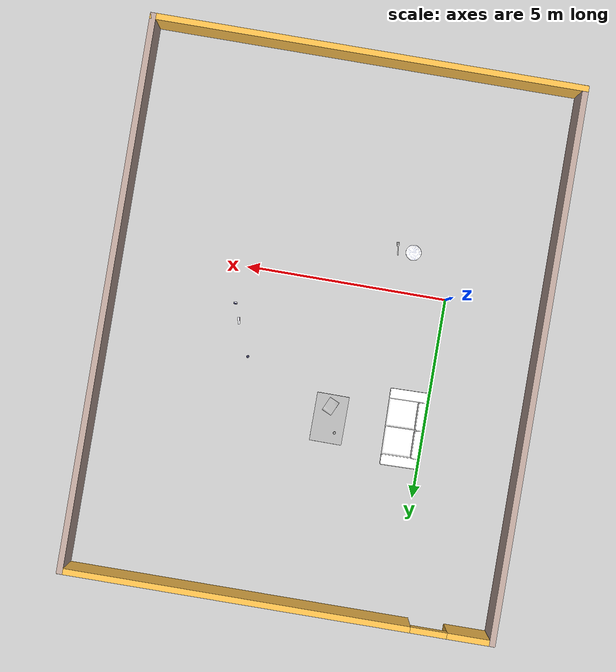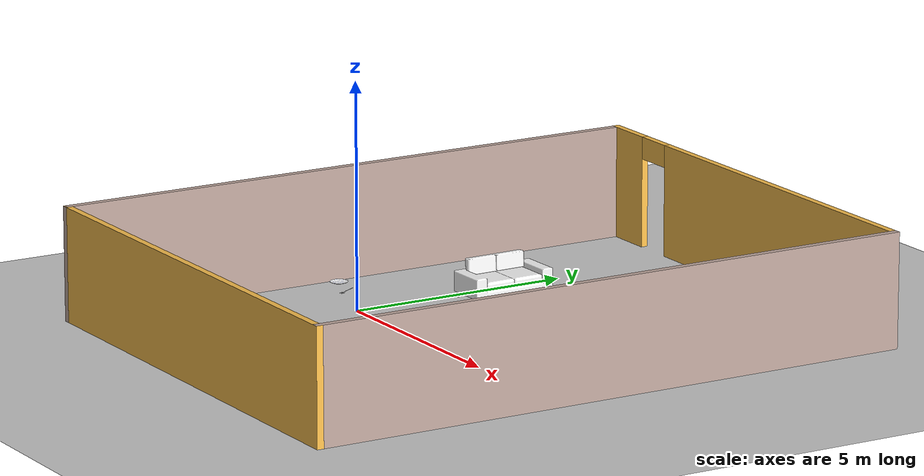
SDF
<sdf version="1.4">
 <world name="default">
  <include><uri>model://ground_plane</uri></include>
  <include><uri>model://sun</uri></include>
  <include><uri>model://center_table</uri></include>
  <include><uri>model://couch2</uri></include>
  <include><uri>model://spatula</uri></include>
  <include><uri>model://bottle</uri></include>
  <include><uri>model://cereal_box</uri></include>
  <include><uri>model://milk_carton</uri></include>
  <include><uri>model://plate</uri></include>
  <include><uri>model://newspaper</uri></include>
  <include><uri>model://coke_can2</uri></include>
  <include><uri>model://Home_Environment_Walls</uri></include>
 </world>
</sdf>

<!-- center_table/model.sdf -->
<sdf version="1.4">
  <model name="center_table">
    <pose>2.759101 2.784628 0 0 0 1.562971</pose>
    <link name="link">
     <collision name="collision">
        <pose>0.6 0.385 0.385 0 0 0</pose>
        <geometry>
          <box>
            <size>1.2 0.8 0.04</size>
           </box>
        </geometry>
      </collision>
      <collision name="collision">
        <geometry>
          <mesh>
            <uri>model://center_table/meshes/center_table.dae</uri>
          </mesh>
        </geometry>
      </collision>
      <visual name="visual">
        <geometry>
          <mesh>
            <uri>model://center_table/meshes/center_table.dae</uri>
          </mesh>
        </geometry>
      </visual>
    </link>
    <static>1</static>
  </model>
</sdf>

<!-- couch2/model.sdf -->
<sdf version="1.4">
  <model name="couch2">
    <link name="link">
     <collision name="collision">
        <pose>0.9832620 2.380100 0 0 1.590720</pose>
        <geometry>
          <mesh>
            <uri>model://couch2/meshes/couch2.dae</uri>
          </mesh>
        </geometry>
      </collision>
      <collision name="collision">
        <pose>0.983262 2.380100 0 0 0 1.590720</pose>
        <geometry>
          <mesh>
            <uri>model://couch2/meshes/couch2.dae</uri>
          </mesh>
        </geometry>
      </collision>
      <visual name="visual">
        <pose>0.983262 2.380100 0 0 0 1.590720</pose>
        <geometry>
          <mesh>
            <uri>model://couch2/meshes/couch2.dae</uri>
          </mesh>
        </geometry>
      </visual>
    </link>
    <static>1</static>
  </model>
</sdf>

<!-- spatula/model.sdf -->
<sdf version="1.4">
  <model name="spatula">
  <pose>2.25 -0.73 .9 0 0 -3</pose>
  <static>false</static>
    <link name="link">
      <inertial>
	<mass>0.4</mass>
	<pose>0.9 0.3 0 0 0 0</pose>
        <inertia>
          <ixx>0.00055575</ixx>
          <ixy>0</ixy>
          <ixz>0</ixz>
          <iyy>0.00055575</iyy>
          <iyz>0</iyz>
          <izz>0.0001755</izz>
	</inertia>
      </inertial>
      <collision name="collision">
        <geometry>
          <mesh>
            <uri>model://spatula/meshes/spatula.dae</uri>
          </mesh>
        </geometry>
        <surface>
          <friction>
            <ode>
              <mu>1.0</mu>
              <mu2>1.0</mu2>
            </ode>
          </friction>
          <contact>
            <ode>
              <kp>10000000.0</kp>
              <kd>1.0</kd>
              <min_depth>0.001</min_depth>
              <max_vel>0.1</max_vel>
            </ode>
          </contact>
        </surface>
      </collision>
      <visual name="visual">
        <geometry>
          <mesh>
            <uri>model://spatula/meshes/spatula.dae</uri>
          </mesh>
        </geometry>
      </visual>
    </link>
  </model>
</sdf>

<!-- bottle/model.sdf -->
<sdf version="1.4">
  <model name="bottle">
  <pose>4.6 2.2 0.8 0 0 0</pose>
    <link name="link">
     <inertial>
	<mass>0.39</mass>
	<pose>0 0 0.08 0 0 0</pose>
        <inertia>
          <ixx>0.00055575</ixx>
          <ixy>0</ixy>
          <ixz>0</ixz>
          <iyy>0.00055575</iyy>
          <iyz>0</iyz>
          <izz>0.0001755</izz>
	</inertia>
     </inertial>
     <collision name="collision">
        <geometry>
          <mesh>
            <uri>model://bottle/meshes/bottle.dae</uri>
<scale>0.02 0.02 0.02</scale>
          </mesh>
        </geometry>
        <surface>
          <friction>
            <ode>
              <mu>1.0</mu>
              <mu2>1.0</mu2>
            </ode>
          </friction>
          <contact>
            <ode>
              <kp>10000000.0</kp>
              <kd>1.0</kd>
              <min_depth>0.001</min_depth>
              <max_vel>0.1</max_vel>
            </ode>
          </contact>
        </surface>
      </collision>
      <visual name="visual">
        <geometry>
          <mesh>
            <uri>model://bottle/meshes/bottle.dae</uri>
            <scale>0.02 0.02 0.02</scale>
          </mesh>
        </geometry>
	<material>
            <ambient>0.4 0 0.7 0.4</ambient>
	    <diffuse>0 0 0.2 .70</diffuse>
	    <specular>0 0 0 1</specular>
	    <emissive>0 0 0 0</emissive>
	</material>
      </visual>
    </link>
    <static>false</static>
  </model>
</sdf>

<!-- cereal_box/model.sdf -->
<sdf version="1.4">
  <model name="cereal_box">
  <pose>4.63 1.04 0.8 0 0 0.22</pose>
    <link name="link">
     <inertial>
	<mass>0.39</mass>
	<pose>0.40 0.25 0.02 0 0 0</pose>
        <inertia>
          <ixx>0.00055575</ixx>
          <ixy>0</ixy>
          <ixz>0</ixz>
          <iyy>0.00055575</iyy>
          <iyz>0</iyz>
          <izz>0.0001755</izz>
	</inertia>
     </inertial>
     <collision name="collision">
        <geometry>
          <mesh>
            <uri>model://cereal_box/meshes/cereal_box.dae</uri>
<scale>0.06 0.06 0.06</scale>
          </mesh>
        </geometry>
        <surface>
          <friction>
            <ode>
              <mu>1.0</mu>
              <mu2>1.0</mu2>
            </ode>
          </friction>
          <contact>
            <ode>
              <kp>10000000.0</kp>
              <kd>1.0</kd>
              <min_depth>0.001</min_depth>
              <max_vel>0.1</max_vel>
            </ode>
          </contact>
        </surface>
      </collision>
      <visual name="visual">
        <geometry>
          <mesh>
            <uri>model://cereal_box/meshes/cereal_box.dae</uri>
<scale>0.06 0.06 0.06</scale>
          </mesh>
        </geometry>
      </visual>
    </link>
    <static>false</static>
  </model>
</sdf>

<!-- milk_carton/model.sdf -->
<sdf version="1.4">
  <model name="milk_carton">
    <pose>4.9 1.6 0.8 0 0 -1.57</pose>
    <link name="link">
     <inertial>
	<mass>0.39</mass>
	<pose>0.65 0.22 0.02 0 0 0</pose>
        <inertia>
          <ixx>0.00055575</ixx>
          <ixy>0</ixy>
          <ixz>0</ixz>
          <iyy>0.00055575</iyy>
          <iyz>0</iyz>
          <izz>0.0001755</izz>
	</inertia>
     </inertial>
     <collision name="collision">
        <geometry>
          <mesh>
            <uri>model://milk_carton/meshes/milk_carton.dae</uri>
	    <scale>0.4 0.6 0.6</scale>
          </mesh>
        </geometry>
        <surface>
          <friction>
            <ode>
              <mu>1.0</mu>
              <mu2>1.0</mu2>
            </ode>
          </friction>
          <contact>
            <ode>
              <kp>10000000.0</kp>
              <kd>1.0</kd>
              <min_depth>0.001</min_depth>
              <max_vel>0.1</max_vel>
            </ode>
          </contact>
        </surface>
      </collision>
      <visual name="visual">
        <geometry>
          <mesh>
            <uri>model://milk_carton/meshes/milk_carton.dae</uri>
	    <scale>0.4 0.6 0.6</scale>
          </mesh>
        </geometry>
      </visual>
    </link>
    <static>false</static>
  </model>
</sdf>

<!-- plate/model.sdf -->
<sdf version="1.5">
  <model name="plate">
    <pose>1 -1 1 0 0 0</pose>
    <link name="link">
      <inertial>
	<mass>0.39</mass>
	<pose>0 0 0 0 0 0</pose>
        <inertia>
          <ixx>0.00055575</ixx>
          <ixy>0</ixy>
          <ixz>0</ixz>
          <iyy>0.00055575</iyy>
          <iyz>0</iyz>
          <izz>0.0001755</izz>
	</inertia>
      </inertial>
      <collision name="collision">
        <geometry>
          <mesh>
            <uri>model://plate/meshes/plate.dae</uri>
	    <scale> 0.2 0.2 0.2 </scale>
          </mesh>
        </geometry>
        <surface>
          <friction>
            <ode>
              <mu>1.0</mu>
              <mu2>1.0</mu2>
            </ode>
          </friction>
          <contact>
            <ode>
              <kp>10000000.0</kp>
              <kd>1.0</kd>
              <min_depth>0.001</min_depth>
              <max_vel>0.1</max_vel>
            </ode>
          </contact>
        </surface>
      </collision>
      <visual name="visual">
        <geometry>
          <mesh>
            <uri>model://plate/meshes/plate.dae</uri>
	    <scale> 0.2 0.2 0.2 </scale>
          </mesh>
        </geometry>
      </visual>
    </link>
  </model>
</sdf>

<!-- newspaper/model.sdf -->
<sdf version="1.5">
  <model name="newspaper">
    <pose>3.93 3.06 0.5 0 0 -2.76</pose>
    <link name="link">
      <inertial>
	<mass>0.39</mass>
	<pose>1.4 -0.6 0.0 0 0 0</pose>
        <inertia>
          <ixx>0.00055575</ixx>
          <ixy>0</ixy>
          <ixz>0</ixz>
          <iyy>0.00055575</iyy>
          <iyz>0</iyz>
          <izz>0.0001755</izz>
	</inertia>
      </inertial>
      <collision name="collision">
        <geometry>
          <mesh>
            <uri>model://newspaper/meshes/newspaper.dae</uri>
          </mesh>
        </geometry>
        <surface>
          <friction>
            <ode>
              <mu>1.0</mu>
              <mu2>1.0</mu2>
            </ode>
          </friction>
          <contact>
            <ode>
              <kp>10000000.0</kp>
              <kd>1.0</kd>
              <min_depth>0.001</min_depth>
              <max_vel>0.1</max_vel>
            </ode>
          </contact>
        </surface>
      </collision>
      <visual name="visual">
        <geometry>
          <mesh>
            <uri>model://newspaper/meshes/newspaper.dae</uri>
          </mesh>
        </geometry>
      </visual>
    </link>
  </model>
</sdf>

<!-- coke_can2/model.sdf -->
<sdf version="1.5">
  <model name="coke_can2">
 <pose>2.186415 3.718465 0.224409 0 0 0</pose>
    <link name="link">
      <inertial>
        <pose>0 0 0.06 0 0 0</pose>
        <mass>0.390</mass>
        <inertia>
          <ixx>0</ixx>
          <ixy>0</ixy>
          <ixz>0</ixz>
          <iyy>0</iyy>
          <iyz>0</iyz>
          <izz>0</izz>
        </inertia>
      </inertial>
      <collision name="collision">
        <geometry>
          <mesh>
            <uri>model://coke_can2/meshes/coke_can2.dae</uri>
          </mesh>
        </geometry>
        <surface>
          <friction>
            <ode>
              <mu>1.0</mu>
              <mu2>1.0</mu2>
            </ode>
          </friction>
          <contact>
            <ode>
              <kp>10000000.0</kp>
              <kd>1.0</kd>
              <min_depth>0.001</min_depth>
              <max_vel>0.1</max_vel>
            </ode>
          </contact>
        </surface>
      </collision>
      <visual name="visual">
        <geometry>
          <mesh>
            <uri>model://coke_can2/meshes/coke_can2.dae</uri>
          </mesh>
        </geometry>
      </visual>
    </link>
  </model>
</sdf>

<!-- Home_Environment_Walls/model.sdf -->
<sdf version='1.6'>
  <model name='Home_Environment_Walls'>
    <pose frame=''>2.89 1.24 0 0 -0 0</pose>
    <link name='Wall_0'>
      <collision name='Wall_0_Collision'>
        <geometry>
          <box>
            <size>13.75 0.15 2.5</size>
          </box>
        </geometry>
        <pose frame=''>0 0 1.25 0 -0 0</pose>
      </collision>
      <visual name='Wall_0_Visual'>
        <pose frame=''>0 0 1.25 0 -0 0</pose>
        <geometry>
          <box>
            <size>13.75 0.15 2.5</size>
          </box>
        </geometry>
        <material>
          <script>
            <uri>file://media/materials/scripts/gazebo.material</uri>
            <name>Gazebo/Grey</name>
          </script>
          <ambient>0.760784 0.662745 0.627451 1</ambient>
        </material>
        <meta>
          <layer>0</layer>
        </meta>
      </visual>
      <pose frame=''>-5.3 0 0 0 -0 1.5708</pose>
    </link>
    <link name='Wall_3'>
      <pose frame=''>0 6.8 0 0 -0 0</pose>
      <visual name='Wall_3_Visual_0'>
        <pose frame=''>-4.7775 0 1.25 0 -0 0</pose>
        <geometry>
          <box>
            <size>1.195 0.15 2.5</size>
          </box>
        </geometry>
        <material>
          <script>
            <uri>file://media/materials/scripts/gazebo.material</uri>
            <name>Gazebo/Grey</name>
          </script>
          <ambient>1 0.764706 0.305882 1</ambient>
        </material>
        <meta>
          <layer>0</layer>
        </meta>
      </visual>
      <collision name='Wall_3_Collision_0'>
        <geometry>
          <box>
            <size>1.195 0.15 2.5</size>
          </box>
        </geometry>
        <pose frame=''>-4.7775 0 1.25 0 -0 0</pose>
      </collision>
      <visual name='Wall_3_Visual_1'>
        <pose frame=''>1.0475 0 1.25 0 -0 0</pose>
        <geometry>
          <box>
            <size>8.655 0.15 2.5</size>
          </box>
        </geometry>
        <material>
          <script>
            <uri>file://media/materials/scripts/gazebo.material</uri>
            <name>Gazebo/Grey</name>
          </script>
          <ambient>1 0.764706 0.305882 1</ambient>
        </material>
        <meta>
          <layer>0</layer>
        </meta>
      </visual>
      <collision name='Wall_3_Collision_1'>
        <geometry>
          <box>
            <size>8.655 0.15 2.5</size>
          </box>
        </geometry>
        <pose frame=''>1.0475 0 1.25 0 -0 0</pose>
      </collision>
      <visual name='Wall_3_Visual_2'>
        <pose frame=''>-3.73 0 2.25 0 -0 0</pose>
        <geometry>
          <box>
            <size>0.9 0.15 0.5</size>
          </box>
        </geometry>
        <material>
          <script>
            <uri>file://media/materials/scripts/gazebo.material</uri>
            <name>Gazebo/Grey</name>
          </script>
          <ambient>1 0.764706 0.305882 1</ambient>
        </material>
        <meta>
          <layer>0</layer>
        </meta>
      </visual>
      <collision name='Wall_3_Collision_2'>
        <geometry>
          <box>
            <size>0.9 0.15 0.5</size>
          </box>
        </geometry>
        <pose frame=''>-3.73 0 2.25 0 -0 0</pose>
      </collision>
    </link>
    <link name='Wall_4'>
      <collision name='Wall_4_Collision'>
        <geometry>
          <box>
            <size>13.75 0.15 2.5</size>
          </box>
        </geometry>
        <pose frame=''>0 0 1.25 0 -0 0</pose>
      </collision>
      <visual name='Wall_4_Visual'>
        <pose frame=''>0 0 1.25 0 -0 0</pose>
        <geometry>
          <box>
            <size>13.75 0.15 2.5</size>
          </box>
        </geometry>
        <material>
          <script>
            <uri>file://media/materials/scripts/gazebo.material</uri>
            <name>Gazebo/Grey</name>
          </script>
          <ambient>0.760784 0.662745 0.627451 1</ambient>
        </material>
        <meta>
          <layer>0</layer>
        </meta>
      </visual>
      <pose frame=''>5.3 0 0 0 -0 -1.5708</pose>
    </link>
    <link name='Wall_7'>
      <collision name='Wall_7_Collision'>
        <geometry>
          <box>
            <size>10.75 0.15 2.5</size>
          </box>
        </geometry>
        <pose frame=''>0 0 1.25 0 -0 0</pose>
      </collision>
      <visual name='Wall_7_Visual'>
        <pose frame=''>0 0 1.25 0 -0 0</pose>
        <geometry>
          <box>
            <size>10.75 0.15 2.5</size>
          </box>
        </geometry>
        <material>
          <script>
            <uri>file://media/materials/scripts/gazebo.material</uri>
            <name>Gazebo/Grey</name>
          </script>
          <ambient>1 0.764706 0.305882 1</ambient>
        </material>
        <meta>
          <layer>0</layer>
        </meta>
      </visual>
      <pose frame=''>0 -6.8 0 0 -0 3.14159</pose>
    </link>
    <static>1</static>
  </model>
</sdf>
